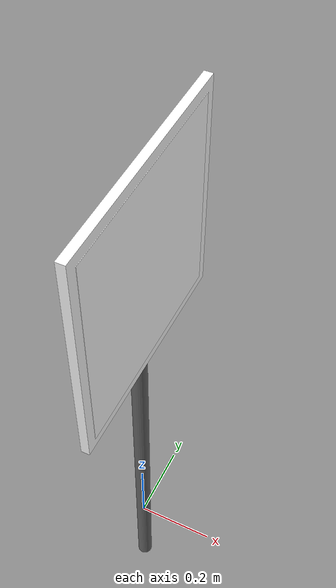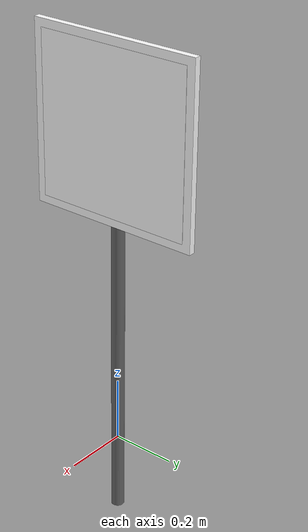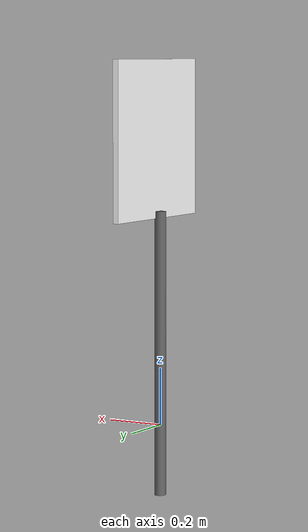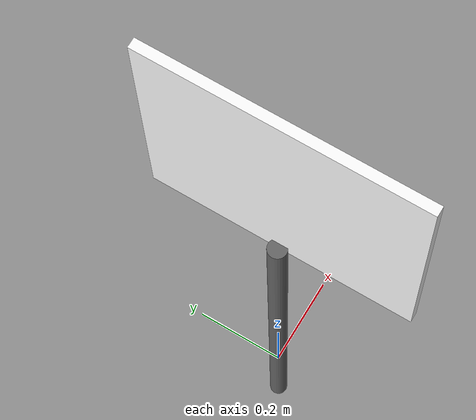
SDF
<?xml version="1.0"?>
<sdf version="1.8">
  <model name="aruco_1">
    <static>true</static>
    <link name="link">

      <visual name="pole_visual">
        <pose>0 0 0.25 0 0 0</pose>
        <geometry>
          <cylinder>
            <radius>0.02</radius>
            <length>1</length>
          </cylinder>
        </geometry>
        <material>
          <ambient>0.4 0.4 0.4 1</ambient>
          <diffuse>0.4 0.4 0.4 1</diffuse>
        </material>
      </visual>
      <collision name="pole_collision">
        <pose>0 0 0.25 0 0 0</pose>
        <geometry>
          <cylinder>
            <radius>0.02</radius>
            <length>1</length>
          </cylinder>
        </geometry>
      </collision>

      <visual name="board_visual">
        <pose>0.02 0 1 0 0 0</pose>
        <geometry>
          <box>
            <size>0.02 0.55 0.55</size>
          </box>
        </geometry>
        <material>
          <ambient>1 1 1 1</ambient>
          <diffuse>1 1 1 1</diffuse>
        </material>
      </visual>
      <collision name="board_collision">
        <pose>0.02 0 1 0 0 0</pose>
        <geometry>
          <box>
            <size>0.02 0.55 0.55</size>
          </box>
        </geometry>
      </collision>

      <visual name="marker_visual">
        <pose>0.031 0 1 0 0 0</pose>
        <geometry>
          <box>
            <size>0.001 0.5 0.5</size>
          </box>
        </geometry>
        <material>
          <diffuse>1 1 1 1</diffuse>
          <pbr>
            <metal>
              <albedo_map>textures/marker_3.png</albedo_map>
            </metal>
          </pbr>
        </material>
      </visual>

    </link>
  </model>
</sdf>
